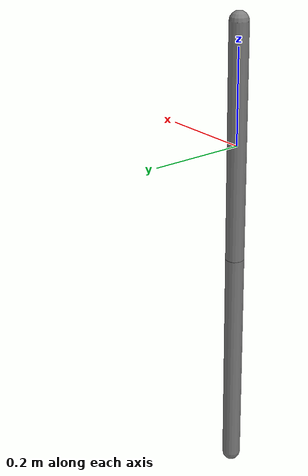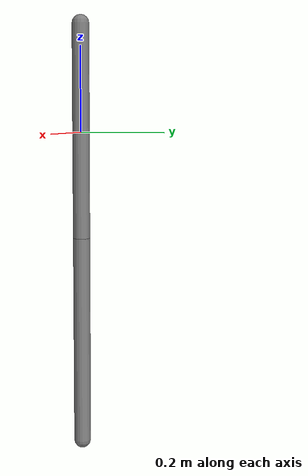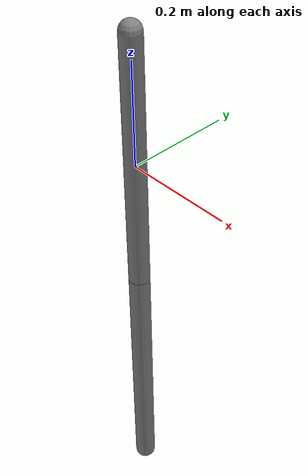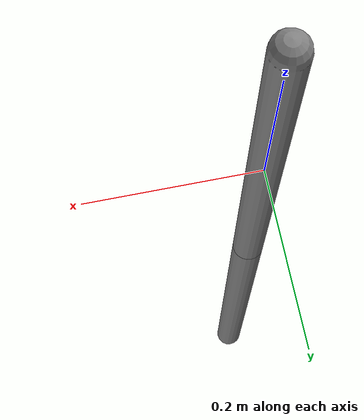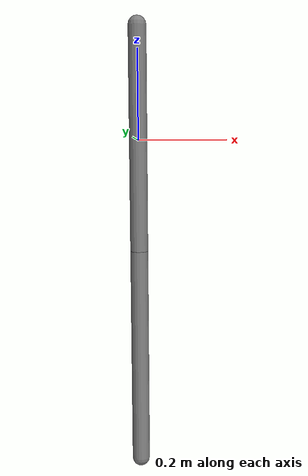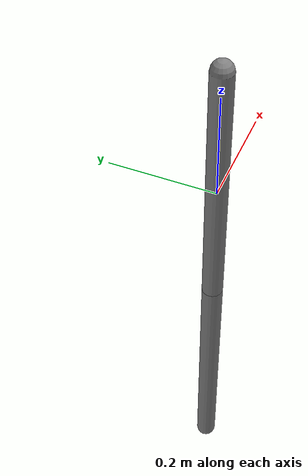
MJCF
<mujoco model="double_pendulum">
            <option gravity="0 0 -9.81" timestep="0.001"/>
            <worldbody>
                <body name="link1" pos="0 0 0">
                    <joint name="joint1" type="hinge" axis="0 1 0"/>
                    <geom type="capsule" size="0.02 0.25" mass="0.5"/>
                    <body name="link2" pos="0 0 -0.5">
                        <joint name="joint2" type="hinge" axis="0 1 0"/>
                        <geom type="capsule" size="0.02 0.25" mass="0.5"/>
                    </body>
                </body>
            </worldbody>
        </mujoco>
